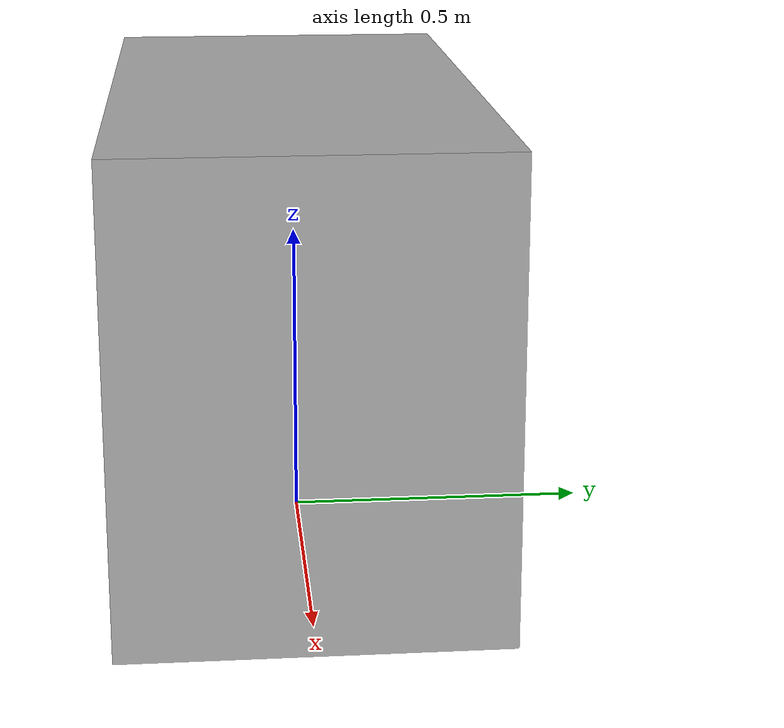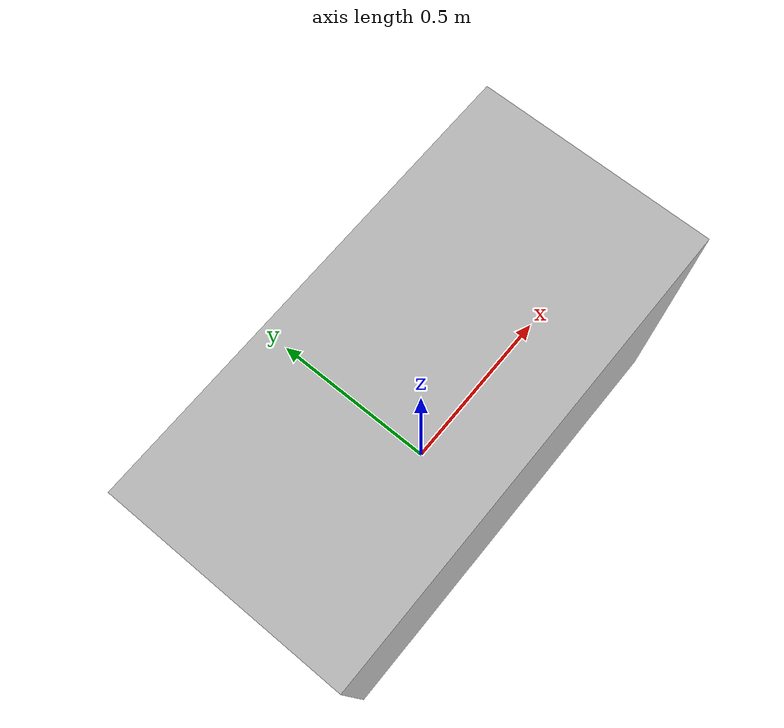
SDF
<?xml version="1.0"?>
<sdf version="1.7">

<model name="table">

  <static>true</static>

  <link name="table_link">

    <collision name="collision">
      <pose>0 0 0.375 0 0 0</pose>

      <geometry>
        <box>
          <size>1.2 0.6 0.75</size>
        </box>
      </geometry>
    </collision>

    <visual name="visual">
      <pose>0 0 0.375 0 0 0</pose>

      <geometry>
        <box>
          <size>1.2 0.6 0.75</size>
        </box>
      </geometry>
    </visual>

  </link>

</model>
</sdf>
